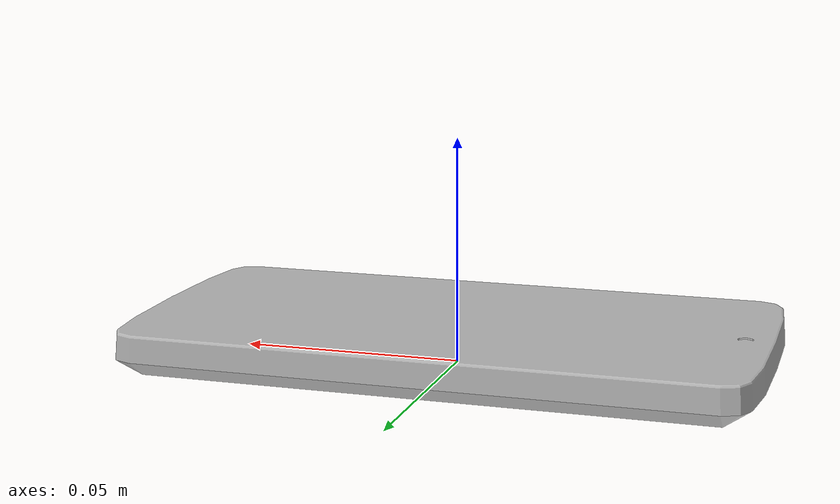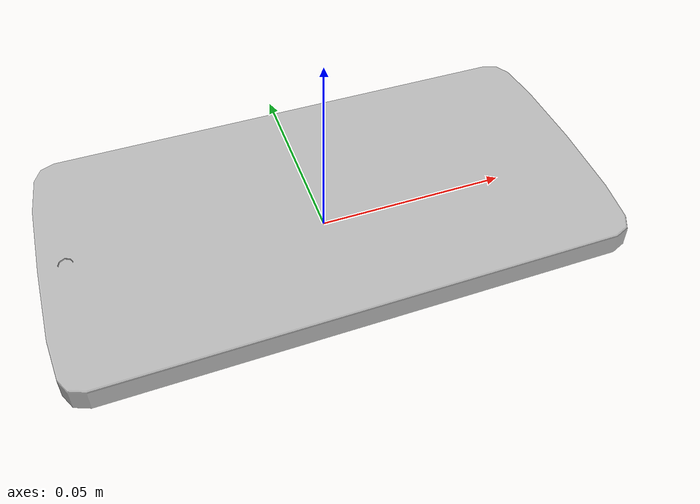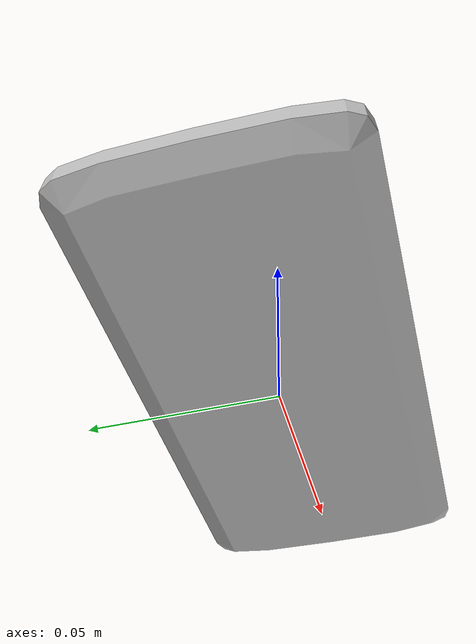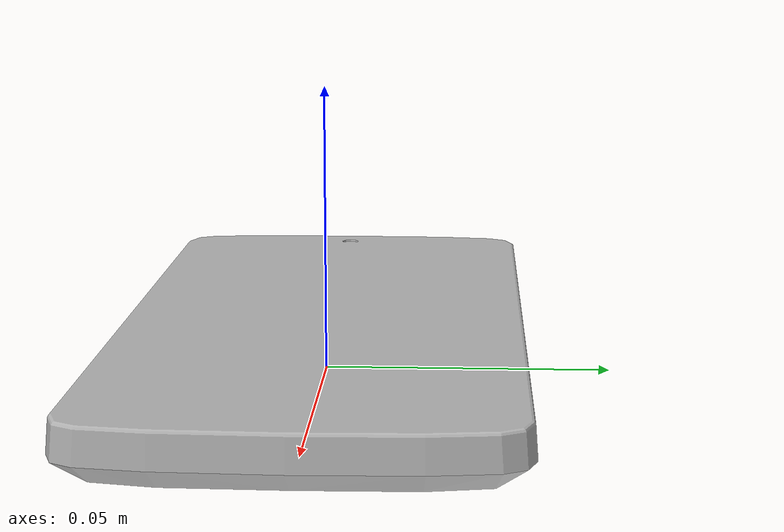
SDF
<?xml version='1.0'?>
<sdf version='1.4'>
  <model name='s__1814'>
    <pose>0 0 0 0 0 0</pose>
    <static>true</static>
    <link name='link'>
      <collision name='collision'>
        <pose>0 0 0 0 0 0</pose>
        <geometry>
          <box>
            <size>0.14 0.07 2</size>
          </box>
        </geometry>
      </collision>
      <visual name='visual'>
        <pose>0 0 0 0 0 0</pose>
        <geometry>
          <mesh><uri>model://s__1814/s__1814.dae</uri></mesh>
        </geometry>
      </visual>
    </link>
  </model>
</sdf>
